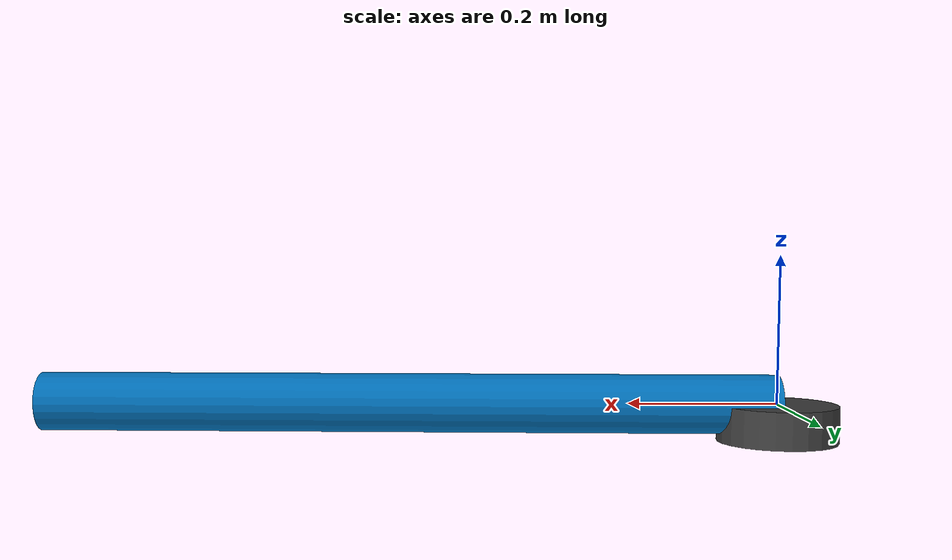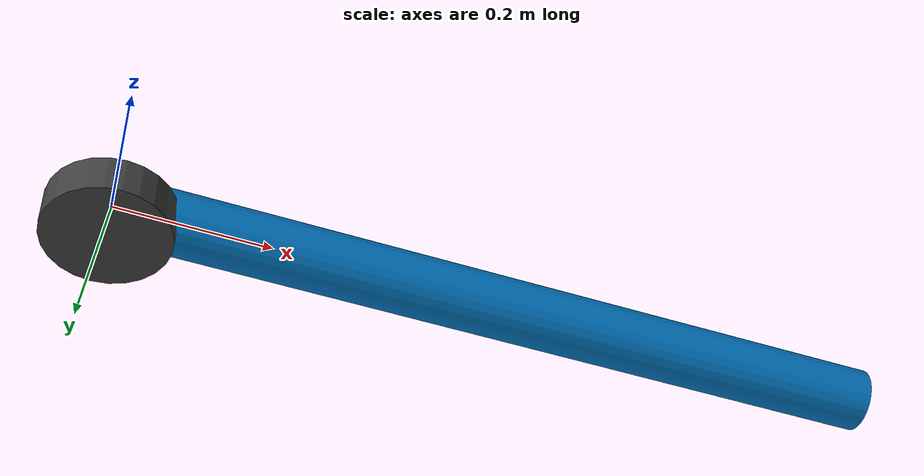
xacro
<?xml version="1.0"?>

<robot name="planar_2r"
       xmlns:xacro="http://www.ros.org/wiki/xacro">

    <!-- Robot Dimensions              -->

    <xacro:property name="link1_length" value="1.0"/>
    <xacro:property name="link2_length" value="0.8"/>

    <xacro:property name="link_radius" value="0.04"/>
    <xacro:property name="base_radius" value="0.08"/>
    <xacro:property name="base_length" value="0.05"/>

    <!-- Robot Colors -->

    <xacro:property name="base_color"
                    value="0.25 0.25 0.25 1"/>

    <xacro:property name="link1_color"
                    value="0.0 0.45 0.74 1"/>

    <xacro:property name="link2_color"
                    value="0.85 0.33 0.10 1"/>

    <xacro:property name="ee_color"
                    value="0.93 0.69 0.13 1"/>

    <!-- Base Link                                          -->
    <!-- Reference frame located at Joint 1 (top of pedestal)       -->

    <link name="base_link">

        <!-- Visual Representation -->

        <visual>

            <!--
                Shift the cylinder downward so that the
                top surface coincides with the base frame.
            -->

            <origin xyz="0 0 ${-base_length/2}"
                    rpy="0 0 0"/>

            <geometry>

                <cylinder
                    radius="${base_radius}"
                    length="${base_length}"/>

            </geometry>

            <material name="base_material">

                <color rgba="${base_color}"/>

            </material>

        </visual>

        <!-- Collision Geometry   -->

        <collision>

            <origin xyz="0 0 ${-base_length/2}"
                    rpy="0 0 0"/>

            <geometry>

                <cylinder
                    radius="${base_radius}"
                    length="${base_length}"/>

            </geometry>

        </collision>

        <!-- Inertial Properties  -->

        <inertial>

            <origin xyz="0 0 ${-base_length/2}"
                    rpy="0 0 0"/>

            <mass value="2.0"/>

            <!--
                Approximate inertia values.
                These will be replaced later when
                we study robot dynamics.
            -->

            <inertia
                ixx="0.002"
                ixy="0"
                ixz="0"
                iyy="0.002"
                iyz="0"
                izz="0.003"/>

        </inertial>

    </link>

    <!-- Link 1                                                    -->
    <!-- Reference frame located at Joint 1                        -->

    <link name="link1">

        <!-- Visual Representation -->

        <visual>

            <!--
                The link frame is located at Joint 1.
                Shift the cylinder by half its length so
                that it extends from Joint 1 to Joint 2.
            -->

            <origin
                xyz="${link1_length/2} 0 0"
                rpy="0 1.57079632679 0"/>

            <geometry>

                <cylinder
                    radius="${link_radius}"
                    length="${link1_length}"/>

            </geometry>

            <material name="link1_material">

                <color rgba="${link1_color}"/>

            </material>

        </visual>

        <!-- Collision Geometry   -->

        <collision>

            <origin
                xyz="${link1_length/2} 0 0"
                rpy="0 1.57079632679 0"/>

            <geometry>

                <cylinder
                    radius="${link_radius}"
                    length="${link1_length}"/>

            </geometry>

        </collision>

        <!-- Inertial Properties  -->

        <inertial>

            <origin
                xyz="${link1_length/2} 0 0"
                rpy="0 1.57079632679 0"/>

            <mass value="1.0"/>

            <inertia
                ixx="0.09"
                ixy="0"
                ixz="0"
                iyy="0.09"
                iyz="0"
                izz="0.001"/>

        </inertial>

    </link>

    <!-- Joint 1                                                   -->
    <!-- Connects base_link to link1                              -->

    <joint name="joint1" type="revolute">

        <!-- Parent and Child Links -->

        <parent link="base_link"/>
        <child link="link1"/>

        <!--
            The link1 frame is located exactly at
            Joint 1, which coincides with the
            base_link frame.
        -->

        <origin
            xyz="0 0 0"
            rpy="0 0 0"/>

        <!-- Rotation about the Z-axis -->

        <axis xyz="0 0 1"/>

        <!-- Joint Limits -->

        <limit
            lower="-3.14159265"
            upper="3.14159265"
            effort="50"
            velocity="2.0"/>

    </joint>

</robot>
